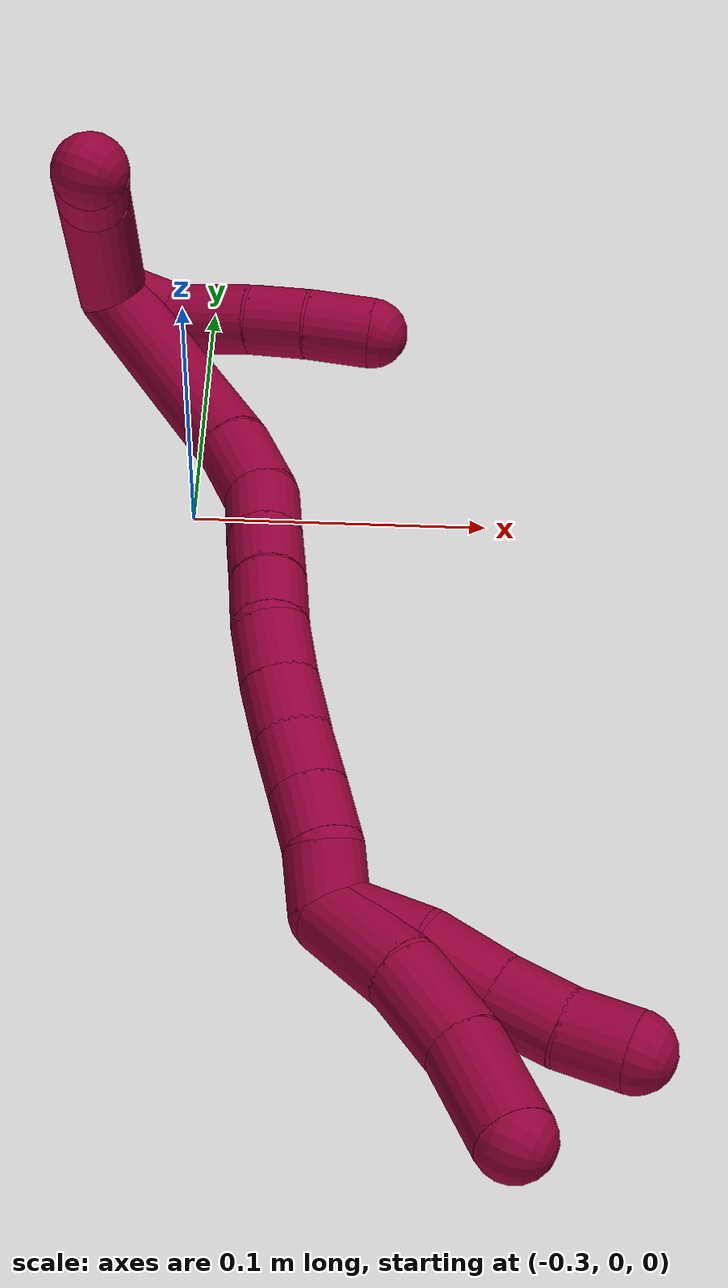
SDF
<sdf version="1.7">
 <world name="default">
  <model name="8">
   <static>0</static>
   <link name="8">
    <collision name="collision-cylinder-e_1_2_8">
     <pose>0.03469 0.030817 -0.009362 -1.86573 0.822481 -1.0635</pose>
     <geometry><cylinder><radius>0.0125</radius><length>0.094673</length></cylinder></geometry>
     <surface>
      <friction><ode><mu>1.16</mu><mu2>1.16</mu2><slip1>0</slip1><slip2>0</slip2></ode></friction>
      <contact><ode><kp>1e+06</kp><kd>1</kd><max_vel>0</max_vel><min_depth>0.001</min_depth></ode></contact>
     </surface>
    </collision>
    <visual name="visual-cylinder-e_1_2_8">
     <pose>0.03469 0.030817 -0.009362 -1.86573 0.822481 -1.0635</pose>
     <geometry><cylinder><radius>0.0125</radius><length>0.094673</length></cylinder></geometry>
     <material><ambient>0.584314 0 0.227451 1</ambient></material>
    </visual>
    <collision name="collision-cylinder-e_2_8_6">
     <pose>0.091889 0.07437 -0.028544 -2.22768 0.950451 -1.61629</pose>
     <geometry><cylinder><radius>0.0125</radius><length>0.055327</length></cylinder></geometry>
     <surface>
      <friction><ode><mu>1.16</mu><mu2>1.16</mu2><slip1>0</slip1><slip2>0</slip2></ode></friction>
      <contact><ode><kp>1e+06</kp><kd>1</kd><max_vel>0</max_vel><min_depth>0.001</min_depth></ode></contact>
     </surface>
    </collision>
    <visual name="visual-cylinder-e_2_8_6">
     <pose>0.091889 0.07437 -0.028544 -2.22768 0.950451 -1.61629</pose>
     <geometry><cylinder><radius>0.0125</radius><length>0.055327</length></cylinder></geometry>
     <material><ambient>0.584314 0 0.227451 1</ambient></material>
    </visual>
    <collision name="collision-cylinder-e_1_2_9">
     <pose>0.000182 0.000165 -0.0132 -3.1291 0.013795 -1.66997</pose>
     <geometry><cylinder><radius>0.0125</radius><length>0.026404</length></cylinder></geometry>
     <surface>
      <friction><ode><mu>1.16</mu><mu2>1.16</mu2><slip1>0</slip1><slip2>0</slip2></ode></friction>
      <contact><ode><kp>1e+06</kp><kd>1</kd><max_vel>0</max_vel><min_depth>0.001</min_depth></ode></contact>
     </surface>
    </collision>
    <visual name="visual-cylinder-e_1_2_9">
     <pose>0.000182 0.000165 -0.0132 -3.1291 0.013795 -1.66997</pose>
     <geometry><cylinder><radius>0.0125</radius><length>0.026404</length></cylinder></geometry>
     <material><ambient>0.584314 0 0.227451 1</ambient></material>
    </visual>
    <collision name="collision-cylinder-e_2_9_10">
     <pose>-0.001403 0.005013 -0.040296 -2.81653 -0.11995 0.702054</pose>
     <geometry><cylinder><radius>0.0125</radius><length>0.029542</length></cylinder></geometry>
     <surface>
      <friction><ode><mu>1.16</mu><mu2>1.16</mu2><slip1>0</slip1><slip2>0</slip2></ode></friction>
      <contact><ode><kp>1e+06</kp><kd>1</kd><max_vel>0</max_vel><min_depth>0.001</min_depth></ode></contact>
     </surface>
    </collision>
    <visual name="visual-cylinder-e_2_9_10">
     <pose>-0.001403 0.005013 -0.040296 -2.81653 -0.11995 0.702054</pose>
     <geometry><cylinder><radius>0.0125</radius><length>0.029542</length></cylinder></geometry>
     <material><ambient>0.584314 0 0.227451 1</ambient></material>
    </visual>
    <collision name="collision-cylinder-e_3_10_11">
     <pose>-0.005118 0.012016 -0.064129 -2.9123 -0.188555 1.37501</pose>
     <geometry><cylinder><radius>0.0125</radius><length>0.020774</length></cylinder></geometry>
     <surface>
      <friction><ode><mu>1.16</mu><mu2>1.16</mu2><slip1>0</slip1><slip2>0</slip2></ode></friction>
      <contact><ode><kp>1e+06</kp><kd>1</kd><max_vel>0</max_vel><min_depth>0.001</min_depth></ode></contact>
     </surface>
    </collision>
    <visual name="visual-cylinder-e_3_10_11">
     <pose>-0.005118 0.012016 -0.064129 -2.9123 -0.188555 1.37501</pose>
     <geometry><cylinder><radius>0.0125</radius><length>0.020774</length></cylinder></geometry>
     <material><ambient>0.584314 0 0.227451 1</ambient></material>
    </visual>
    <collision name="collision-cylinder-e_4_11_5">
     <pose>-0.01007 0.015973 -0.08519 -2.99544 -0.261128 2.1244</pose>
     <geometry><cylinder><radius>0.0125</radius><length>0.02328</length></cylinder></geometry>
     <surface>
      <friction><ode><mu>1.16</mu><mu2>1.16</mu2><slip1>0</slip1><slip2>0</slip2></ode></friction>
      <contact><ode><kp>1e+06</kp><kd>1</kd><max_vel>0</max_vel><min_depth>0.001</min_depth></ode></contact>
     </surface>
    </collision>
    <visual name="visual-cylinder-e_4_11_5">
     <pose>-0.01007 0.015973 -0.08519 -2.99544 -0.261128 2.1244</pose>
     <geometry><cylinder><radius>0.0125</radius><length>0.02328</length></cylinder></geometry>
     <material><ambient>0.584314 0 0.227451 1</ambient></material>
    </visual>
    <collision name="collision-cylinder-e_1_2_12">
     <pose>0.032596 -0.003393 -0.043271 3.06334 0.644129 2.90802</pose>
     <geometry><cylinder><radius>0.0125</radius><length>0.108562</length></cylinder></geometry>
     <surface>
      <friction><ode><mu>1.16</mu><mu2>1.16</mu2><slip1>0</slip1><slip2>0</slip2></ode></friction>
      <contact><ode><kp>1e+06</kp><kd>1</kd><max_vel>0</max_vel><min_depth>0.001</min_depth></ode></contact>
     </surface>
    </collision>
    <visual name="visual-cylinder-e_1_2_12">
     <pose>0.032596 -0.003393 -0.043271 3.06334 0.644129 2.90802</pose>
     <geometry><cylinder><radius>0.0125</radius><length>0.108562</length></cylinder></geometry>
     <material><ambient>0.584314 0 0.227451 1</ambient></material>
    </visual>
    <collision name="collision-cylinder-e_2_12_13">
     <pose>0.07386 -0.009104 -0.096779 2.91893 0.690344 2.53871</pose>
     <geometry><cylinder><radius>0.0125</radius><length>0.027223</length></cylinder></geometry>
     <surface>
      <friction><ode><mu>1.16</mu><mu2>1.16</mu2><slip1>0</slip1><slip2>0</slip2></ode></friction>
      <contact><ode><kp>1e+06</kp><kd>1</kd><max_vel>0</max_vel><min_depth>0.001</min_depth></ode></contact>
     </surface>
    </collision>
    <visual name="visual-cylinder-e_2_12_13">
     <pose>0.07386 -0.009104 -0.096779 2.91893 0.690344 2.53871</pose>
     <geometry><cylinder><radius>0.0125</radius><length>0.027223</length></cylinder></geometry>
     <material><ambient>0.584314 0 0.227451 1</ambient></material>
    </visual>
    <collision name="collision-cylinder-e_3_13_14">
     <pose>0.091706 -0.013749 -0.11272 2.75426 0.979553 2.43653</pose>
     <geometry><cylinder><radius>0.0125</radius><length>0.022109</length></cylinder></geometry>
     <surface>
      <friction><ode><mu>1.16</mu><mu2>1.16</mu2><slip1>0</slip1><slip2>0</slip2></ode></friction>
      <contact><ode><kp>1e+06</kp><kd>1</kd><max_vel>0</max_vel><min_depth>0.001</min_depth></ode></contact>
     </surface>
    </collision>
    <visual name="visual-cylinder-e_3_13_14">
     <pose>0.091706 -0.013749 -0.11272 2.75426 0.979553 2.43653</pose>
     <geometry><cylinder><radius>0.0125</radius><length>0.022109</length></cylinder></geometry>
     <material><ambient>0.584314 0 0.227451 1</ambient></material>
    </visual>
    <collision name="collision-cylinder-e_4_14_15">
     <pose>0.109957 -0.018154 -0.124132 2.79243 0.980978 2.50358</pose>
     <geometry><cylinder><radius>0.0125</radius><length>0.021838</length></cylinder></geometry>
     <surface>
      <friction><ode><mu>1.16</mu><mu2>1.16</mu2><slip1>0</slip1><slip2>0</slip2></ode></friction>
      <contact><ode><kp>1e+06</kp><kd>1</kd><max_vel>0</max_vel><min_depth>0.001</min_depth></ode></contact>
     </surface>
    </collision>
    <visual name="visual-cylinder-e_4_14_15">
     <pose>0.109957 -0.018154 -0.124132 2.79243 0.980978 2.50358</pose>
     <geometry><cylinder><radius>0.0125</radius><length>0.021838</length></cylinder></geometry>
     <material><ambient>0.584314 0 0.227451 1</ambient></material>
    </visual>
    <collision name="collision-cylinder-e_5_15_16">
     <pose>0.127292 -0.0229 -0.135064 2.66943 0.953177 2.26951</pose>
     <geometry><cylinder><radius>0.0125</radius><length>0.020264</length></cylinder></geometry>
     <surface>
      <friction><ode><mu>1.16</mu><mu2>1.16</mu2><slip1>0</slip1><slip2>0</slip2></ode></friction>
      <contact><ode><kp>1e+06</kp><kd>1</kd><max_vel>0</max_vel><min_depth>0.001</min_depth></ode></contact>
     </surface>
    </collision>
    <visual name="visual-cylinder-e_5_15_16">
     <pose>0.127292 -0.0229 -0.135064 2.66943 0.953177 2.26951</pose>
     <geometry><cylinder><radius>0.0125</radius><length>0.020264</length></cylinder></geometry>
     <material><ambient>0.584314 0 0.227451 1</ambient></material>
    </visual>
    <collision name="collision-cylinder-e_6_16_17">
     <pose>0.141947 -0.030345 -0.146314 2.47129 0.693858 1.60816</pose>
     <geometry><cylinder><radius>0.0125</radius><length>0.02</length></cylinder></geometry>
     <surface>
      <friction><ode><mu>1.16</mu><mu2>1.16</mu2><slip1>0</slip1><slip2>0</slip2></ode></friction>
      <contact><ode><kp>1e+06</kp><kd>1</kd><max_vel>0</max_vel><min_depth>0.001</min_depth></ode></contact>
     </surface>
    </collision>
    <visual name="visual-cylinder-e_6_16_17">
     <pose>0.141947 -0.030345 -0.146314 2.47129 0.693858 1.60816</pose>
     <geometry><cylinder><radius>0.0125</radius><length>0.02</length></cylinder></geometry>
     <material><ambient>0.584314 0 0.227451 1</ambient></material>
    </visual>
    <collision name="collision-cylinder-e_7_17_18">
     <pose>0.154498 -0.039567 -0.158848 2.54229 0.66299 1.67861</pose>
     <geometry><cylinder><radius>0.0125</radius><length>0.020004</length></cylinder></geometry>
     <surface>
      <friction><ode><mu>1.16</mu><mu2>1.16</mu2><slip1>0</slip1><slip2>0</slip2></ode></friction>
      <contact><ode><kp>1e+06</kp><kd>1</kd><max_vel>0</max_vel><min_depth>0.001</min_depth></ode></contact>
     </surface>
    </collision>
    <visual name="visual-cylinder-e_7_17_18">
     <pose>0.154498 -0.039567 -0.158848 2.54229 0.66299 1.67861</pose>
     <geometry><cylinder><radius>0.0125</radius><length>0.020004</length></cylinder></geometry>
     <material><ambient>0.584314 0 0.227451 1</ambient></material>
    </visual>
    <collision name="collision-cylinder-e_8_18_19">
     <pose>0.167046 -0.047707 -0.172103 2.64068 0.693444 1.90939</pose>
     <geometry><cylinder><radius>0.0125</radius><length>0.02</length></cylinder></geometry>
     <surface>
      <friction><ode><mu>1.16</mu><mu2>1.16</mu2><slip1>0</slip1><slip2>0</slip2></ode></friction>
      <contact><ode><kp>1e+06</kp><kd>1</kd><max_vel>0</max_vel><min_depth>0.001</min_depth></ode></contact>
     </surface>
    </collision>
    <visual name="visual-cylinder-e_8_18_19">
     <pose>0.167046 -0.047707 -0.172103 2.64068 0.693444 1.90939</pose>
     <geometry><cylinder><radius>0.0125</radius><length>0.02</length></cylinder></geometry>
     <material><ambient>0.584314 0 0.227451 1</ambient></material>
    </visual>
    <collision name="collision-cylinder-e_9_19_20">
     <pose>0.179924 -0.055139 -0.185478 2.62816 0.70571 1.90304</pose>
     <geometry><cylinder><radius>0.0125</radius><length>0.02</length></cylinder></geometry>
     <surface>
      <friction><ode><mu>1.16</mu><mu2>1.16</mu2><slip1>0</slip1><slip2>0</slip2></ode></friction>
      <contact><ode><kp>1e+06</kp><kd>1</kd><max_vel>0</max_vel><min_depth>0.001</min_depth></ode></contact>
     </surface>
    </collision>
    <visual name="visual-cylinder-e_9_19_20">
     <pose>0.179924 -0.055139 -0.185478 2.62816 0.70571 1.90304</pose>
     <geometry><cylinder><radius>0.0125</radius><length>0.02</length></cylinder></geometry>
     <material><ambient>0.584314 0 0.227451 1</ambient></material>
    </visual>
    <collision name="collision-cylinder-e_10_20_1">
     <pose>0.191753 -0.065491 -0.197372 2.24298 0.563748 1.08164</pose>
     <geometry><cylinder><radius>0.0125</radius><length>0.02</length></cylinder></geometry>
     <surface>
      <friction><ode><mu>1.16</mu><mu2>1.16</mu2><slip1>0</slip1><slip2>0</slip2></ode></friction>
      <contact><ode><kp>1e+06</kp><kd>1</kd><max_vel>0</max_vel><min_depth>0.001</min_depth></ode></contact>
     </surface>
    </collision>
    <visual name="visual-cylinder-e_10_20_1">
     <pose>0.191753 -0.065491 -0.197372 2.24298 0.563748 1.08164</pose>
     <geometry><cylinder><radius>0.0125</radius><length>0.02</length></cylinder></geometry>
     <material><ambient>0.584314 0 0.227451 1</ambient></material>
    </visual>
    <collision name="collision-cylinder-e_1_1_21">
     <pose>0.20438 -0.071232 -0.218158 -3.08537 0.438142 -2.89032</pose>
     <geometry><cylinder><radius>0.0125</radius><length>0.034337</length></cylinder></geometry>
     <surface>
      <friction><ode><mu>1.16</mu><mu2>1.16</mu2><slip1>0</slip1><slip2>0</slip2></ode></friction>
      <contact><ode><kp>1e+06</kp><kd>1</kd><max_vel>0</max_vel><min_depth>0.001</min_depth></ode></contact>
     </surface>
    </collision>
    <visual name="visual-cylinder-e_1_1_21">
     <pose>0.20438 -0.071232 -0.218158 -3.08537 0.438142 -2.89032</pose>
     <geometry><cylinder><radius>0.0125</radius><length>0.034337</length></cylinder></geometry>
     <material><ambient>0.584314 0 0.227451 1</ambient></material>
    </visual>
    <collision name="collision-cylinder-e_2_21_22">
     <pose>0.2194 -0.07203 -0.247094 3.01755 0.519754 2.6827</pose>
     <geometry><cylinder><radius>0.0125</radius><length>0.031149</length></cylinder></geometry>
     <surface>
      <friction><ode><mu>1.16</mu><mu2>1.16</mu2><slip1>0</slip1><slip2>0</slip2></ode></friction>
      <contact><ode><kp>1e+06</kp><kd>1</kd><max_vel>0</max_vel><min_depth>0.001</min_depth></ode></contact>
     </surface>
    </collision>
    <visual name="visual-cylinder-e_2_21_22">
     <pose>0.2194 -0.07203 -0.247094 3.01755 0.519754 2.6827</pose>
     <geometry><cylinder><radius>0.0125</radius><length>0.031149</length></cylinder></geometry>
     <material><ambient>0.584314 0 0.227451 1</ambient></material>
    </visual>
    <collision name="collision-cylinder-e_3_22_4">
     <pose>0.238238 -0.075952 -0.273526 2.97054 0.698912 2.67944</pose>
     <geometry><cylinder><radius>0.0125</radius><length>0.034513</length></cylinder></geometry>
     <surface>
      <friction><ode><mu>1.16</mu><mu2>1.16</mu2><slip1>0</slip1><slip2>0</slip2></ode></friction>
      <contact><ode><kp>1e+06</kp><kd>1</kd><max_vel>0</max_vel><min_depth>0.001</min_depth></ode></contact>
     </surface>
    </collision>
    <visual name="visual-cylinder-e_3_22_4">
     <pose>0.238238 -0.075952 -0.273526 2.97054 0.698912 2.67944</pose>
     <geometry><cylinder><radius>0.0125</radius><length>0.034513</length></cylinder></geometry>
     <material><ambient>0.584314 0 0.227451 1</ambient></material>
    </visual>
    <collision name="collision-cylinder-e_1_1_23">
     <pose>0.197121 -0.070708 -0.217813 -3.04981 0.001619 -0.03526</pose>
     <geometry><cylinder><radius>0.0125</radius><length>0.030484</length></cylinder></geometry>
     <surface>
      <friction><ode><mu>1.16</mu><mu2>1.16</mu2><slip1>0</slip1><slip2>0</slip2></ode></friction>
      <contact><ode><kp>1e+06</kp><kd>1</kd><max_vel>0</max_vel><min_depth>0.001</min_depth></ode></contact>
     </surface>
    </collision>
    <visual name="visual-cylinder-e_1_1_23">
     <pose>0.197121 -0.070708 -0.217813 -3.04981 0.001619 -0.03526</pose>
     <geometry><cylinder><radius>0.0125</radius><length>0.030484</length></cylinder></geometry>
     <material><ambient>0.584314 0 0.227451 1</ambient></material>
    </visual>
    <collision name="collision-cylinder-e_2_23_24">
     <pose>0.198083 -0.070453 -0.245956 3.05374 0.07185 1.37082</pose>
     <geometry><cylinder><radius>0.0125</radius><length>0.026099</length></cylinder></geometry>
     <surface>
      <friction><ode><mu>1.16</mu><mu2>1.16</mu2><slip1>0</slip1><slip2>0</slip2></ode></friction>
      <contact><ode><kp>1e+06</kp><kd>1</kd><max_vel>0</max_vel><min_depth>0.001</min_depth></ode></contact>
     </surface>
    </collision>
    <visual name="visual-cylinder-e_2_23_24">
     <pose>0.198083 -0.070453 -0.245956 3.05374 0.07185 1.37082</pose>
     <geometry><cylinder><radius>0.0125</radius><length>0.026099</length></cylinder></geometry>
     <material><ambient>0.584314 0 0.227451 1</ambient></material>
    </visual>
    <collision name="collision-cylinder-e_3_24_25">
     <pose>0.199957 -0.071426 -0.270011 -3.12636 0.084321 -2.78428</pose>
     <geometry><cylinder><radius>0.0125</radius><length>0.022261</length></cylinder></geometry>
     <surface>
      <friction><ode><mu>1.16</mu><mu2>1.16</mu2><slip1>0</slip1><slip2>0</slip2></ode></friction>
      <contact><ode><kp>1e+06</kp><kd>1</kd><max_vel>0</max_vel><min_depth>0.001</min_depth></ode></contact>
     </surface>
    </collision>
    <visual name="visual-cylinder-e_3_24_25">
     <pose>0.199957 -0.071426 -0.270011 -3.12636 0.084321 -2.78428</pose>
     <geometry><cylinder><radius>0.0125</radius><length>0.022261</length></cylinder></geometry>
     <material><ambient>0.584314 0 0.227451 1</ambient></material>
    </visual>
    <collision name="collision-cylinder-e_4_25_3">
     <pose>0.200754 -0.069965 -0.291599 -3.01914 -0.013231 0.215008</pose>
     <geometry><cylinder><radius>0.0125</radius><length>0.021157</length></cylinder></geometry>
     <surface>
      <friction><ode><mu>1.16</mu><mu2>1.16</mu2><slip1>0</slip1><slip2>0</slip2></ode></friction>
      <contact><ode><kp>1e+06</kp><kd>1</kd><max_vel>0</max_vel><min_depth>0.001</min_depth></ode></contact>
     </surface>
    </collision>
    <visual name="visual-cylinder-e_4_25_3">
     <pose>0.200754 -0.069965 -0.291599 -3.01914 -0.013231 0.215008</pose>
     <geometry><cylinder><radius>0.0125</radius><length>0.021157</length></cylinder></geometry>
     <material><ambient>0.584314 0 0.227451 1</ambient></material>
    </visual>
    <collision name="collision-sphere-3">
     <pose>0.200614 -0.068673 -0.302097 0 -0 0</pose>
     <geometry><sphere><radius>0.0125</radius></sphere></geometry>
     <surface>
      <friction><ode><mu>1.16</mu><mu2>1.16</mu2><slip1>0</slip1><slip2>0</slip2></ode></friction>
      <contact><ode><kp>1e+06</kp><kd>1</kd><max_vel>0</max_vel><min_depth>0.001</min_depth></ode></contact>
     </surface>
    </collision>
    <visual name="visual-sphere-3">
     <pose>0.200614 -0.068673 -0.302097 0 -0 0</pose>
     <geometry><sphere><radius>0.0125</radius></sphere></geometry>
     <material><ambient>0.584314 0 0.227451 1</ambient></material>
    </visual>
    <collision name="collision-sphere-25">
     <pose>0.200894 -0.071257 -0.2811 0 -0 0</pose>
     <geometry><sphere><radius>0.0125</radius></sphere></geometry>
     <surface>
      <friction><ode><mu>1.16</mu><mu2>1.16</mu2><slip1>0</slip1><slip2>0</slip2></ode></friction>
      <contact><ode><kp>1e+06</kp><kd>1</kd><max_vel>0</max_vel><min_depth>0.001</min_depth></ode></contact>
     </surface>
    </collision>
    <visual name="visual-sphere-25">
     <pose>0.200894 -0.071257 -0.2811 0 -0 0</pose>
     <geometry><sphere><radius>0.0125</radius></sphere></geometry>
     <material><ambient>0.584314 0 0.227451 1</ambient></material>
    </visual>
    <collision name="collision-sphere-24">
     <pose>0.199019 -0.071595 -0.258921 0 -0 0</pose>
     <geometry><sphere><radius>0.0125</radius></sphere></geometry>
     <surface>
      <friction><ode><mu>1.16</mu><mu2>1.16</mu2><slip1>0</slip1><slip2>0</slip2></ode></friction>
      <contact><ode><kp>1e+06</kp><kd>1</kd><max_vel>0</max_vel><min_depth>0.001</min_depth></ode></contact>
     </surface>
    </collision>
    <visual name="visual-sphere-24">
     <pose>0.199019 -0.071595 -0.258921 0 -0 0</pose>
     <geometry><sphere><radius>0.0125</radius></sphere></geometry>
     <material><ambient>0.584314 0 0.227451 1</ambient></material>
    </visual>
    <collision name="collision-sphere-23">
     <pose>0.197146 -0.069311 -0.232991 0 -0 0</pose>
     <geometry><sphere><radius>0.0125</radius></sphere></geometry>
     <surface>
      <friction><ode><mu>1.16</mu><mu2>1.16</mu2><slip1>0</slip1><slip2>0</slip2></ode></friction>
      <contact><ode><kp>1e+06</kp><kd>1</kd><max_vel>0</max_vel><min_depth>0.001</min_depth></ode></contact>
     </surface>
    </collision>
    <visual name="visual-sphere-23">
     <pose>0.197146 -0.069311 -0.232991 0 -0 0</pose>
     <geometry><sphere><radius>0.0125</radius></sphere></geometry>
     <material><ambient>0.584314 0 0.227451 1</ambient></material>
    </visual>
    <collision name="collision-sphere-4">
     <pose>0.249341 -0.0782 -0.286544 0 -0 0</pose>
     <geometry><sphere><radius>0.0125</radius></sphere></geometry>
     <surface>
      <friction><ode><mu>1.16</mu><mu2>1.16</mu2><slip1>0</slip1><slip2>0</slip2></ode></friction>
      <contact><ode><kp>1e+06</kp><kd>1</kd><max_vel>0</max_vel><min_depth>0.001</min_depth></ode></contact>
     </surface>
    </collision>
    <visual name="visual-sphere-4">
     <pose>0.249341 -0.0782 -0.286544 0 -0 0</pose>
     <geometry><sphere><radius>0.0125</radius></sphere></geometry>
     <material><ambient>0.584314 0 0.227451 1</ambient></material>
    </visual>
    <collision name="collision-sphere-22">
     <pose>0.227135 -0.073703 -0.260508 0 -0 0</pose>
     <geometry><sphere><radius>0.0125</radius></sphere></geometry>
     <surface>
      <friction><ode><mu>1.16</mu><mu2>1.16</mu2><slip1>0</slip1><slip2>0</slip2></ode></friction>
      <contact><ode><kp>1e+06</kp><kd>1</kd><max_vel>0</max_vel><min_depth>0.001</min_depth></ode></contact>
     </surface>
    </collision>
    <visual name="visual-sphere-22">
     <pose>0.227135 -0.073703 -0.260508 0 -0 0</pose>
     <geometry><sphere><radius>0.0125</radius></sphere></geometry>
     <material><ambient>0.584314 0 0.227451 1</ambient></material>
    </visual>
    <collision name="collision-sphere-21">
     <pose>0.211664 -0.070358 -0.23368 0 -0 0</pose>
     <geometry><sphere><radius>0.0125</radius></sphere></geometry>
     <surface>
      <friction><ode><mu>1.16</mu><mu2>1.16</mu2><slip1>0</slip1><slip2>0</slip2></ode></friction>
      <contact><ode><kp>1e+06</kp><kd>1</kd><max_vel>0</max_vel><min_depth>0.001</min_depth></ode></contact>
     </surface>
    </collision>
    <visual name="visual-sphere-21">
     <pose>0.211664 -0.070358 -0.23368 0 -0 0</pose>
     <geometry><sphere><radius>0.0125</radius></sphere></geometry>
     <material><ambient>0.584314 0 0.227451 1</ambient></material>
    </visual>
    <collision name="collision-sphere-1">
     <pose>0.197097 -0.072105 -0.202635 0 -0 0</pose>
     <geometry><sphere><radius>0.0125</radius></sphere></geometry>
     <surface>
      <friction><ode><mu>1.16</mu><mu2>1.16</mu2><slip1>0</slip1><slip2>0</slip2></ode></friction>
      <contact><ode><kp>1e+06</kp><kd>1</kd><max_vel>0</max_vel><min_depth>0.001</min_depth></ode></contact>
     </surface>
    </collision>
    <visual name="visual-sphere-1">
     <pose>0.197097 -0.072105 -0.202635 0 -0 0</pose>
     <geometry><sphere><radius>0.0125</radius></sphere></geometry>
     <material><ambient>0.584314 0 0.227451 1</ambient></material>
    </visual>
    <collision name="collision-sphere-11">
     <pose>-0.007065 0.014335 -0.074065 0 -0 0</pose>
     <geometry><sphere><radius>0.0125</radius></sphere></geometry>
     <surface>
      <friction><ode><mu>1.16</mu><mu2>1.16</mu2><slip1>0</slip1><slip2>0</slip2></ode></friction>
      <contact><ode><kp>1e+06</kp><kd>1</kd><max_vel>0</max_vel><min_depth>0.001</min_depth></ode></contact>
     </surface>
    </collision>
    <visual name="visual-sphere-11">
     <pose>-0.007065 0.014335 -0.074065 0 -0 0</pose>
     <geometry><sphere><radius>0.0125</radius></sphere></geometry>
     <material><ambient>0.584314 0 0.227451 1</ambient></material>
    </visual>
    <collision name="collision-sphere-10">
     <pose>-0.003171 0.009697 -0.054193 0 -0 0</pose>
     <geometry><sphere><radius>0.0125</radius></sphere></geometry>
     <surface>
      <friction><ode><mu>1.16</mu><mu2>1.16</mu2><slip1>0</slip1><slip2>0</slip2></ode></friction>
      <contact><ode><kp>1e+06</kp><kd>1</kd><max_vel>0</max_vel><min_depth>0.001</min_depth></ode></contact>
     </surface>
    </collision>
    <visual name="visual-sphere-10">
     <pose>-0.003171 0.009697 -0.054193 0 -0 0</pose>
     <geometry><sphere><radius>0.0125</radius></sphere></geometry>
     <material><ambient>0.584314 0 0.227451 1</ambient></material>
    </visual>
    <collision name="collision-sphere-6">
     <pose>0.114398 0.087104 -0.038364 0 -0 0</pose>
     <geometry><sphere><radius>0.0125</radius></sphere></geometry>
     <surface>
      <friction><ode><mu>1.16</mu><mu2>1.16</mu2><slip1>0</slip1><slip2>0</slip2></ode></friction>
      <contact><ode><kp>1e+06</kp><kd>1</kd><max_vel>0</max_vel><min_depth>0.001</min_depth></ode></contact>
     </surface>
    </collision>
    <visual name="visual-sphere-6">
     <pose>0.114398 0.087104 -0.038364 0 -0 0</pose>
     <geometry><sphere><radius>0.0125</radius></sphere></geometry>
     <material><ambient>0.584314 0 0.227451 1</ambient></material>
    </visual>
    <collision name="collision-sphere-9">
     <pose>0.000364 0.00033 -0.026399 0 -0 0</pose>
     <geometry><sphere><radius>0.0125</radius></sphere></geometry>
     <surface>
      <friction><ode><mu>1.16</mu><mu2>1.16</mu2><slip1>0</slip1><slip2>0</slip2></ode></friction>
      <contact><ode><kp>1e+06</kp><kd>1</kd><max_vel>0</max_vel><min_depth>0.001</min_depth></ode></contact>
     </surface>
    </collision>
    <visual name="visual-sphere-9">
     <pose>0.000364 0.00033 -0.026399 0 -0 0</pose>
     <geometry><sphere><radius>0.0125</radius></sphere></geometry>
     <material><ambient>0.584314 0 0.227451 1</ambient></material>
    </visual>
    <collision name="collision-sphere-2">
     <geometry><sphere><radius>0.0125</radius></sphere></geometry>
     <surface>
      <friction><ode><mu>1.16</mu><mu2>1.16</mu2><slip1>0</slip1><slip2>0</slip2></ode></friction>
      <contact><ode><kp>1e+06</kp><kd>1</kd><max_vel>0</max_vel><min_depth>0.001</min_depth></ode></contact>
     </surface>
    </collision>
    <visual name="visual-sphere-2">
     <geometry><sphere><radius>0.0125</radius></sphere></geometry>
     <material><ambient>0.584314 0 0.227451 1</ambient></material>
    </visual>
    <collision name="collision-sphere-19">
     <pose>0.173438 -0.0514 -0.178848 0 -0 0</pose>
     <geometry><sphere><radius>0.0125</radius></sphere></geometry>
     <surface>
      <friction><ode><mu>1.16</mu><mu2>1.16</mu2><slip1>0</slip1><slip2>0</slip2></ode></friction>
      <contact><ode><kp>1e+06</kp><kd>1</kd><max_vel>0</max_vel><min_depth>0.001</min_depth></ode></contact>
     </surface>
    </collision>
    <visual name="visual-sphere-19">
     <pose>0.173438 -0.0514 -0.178848 0 -0 0</pose>
     <geometry><sphere><radius>0.0125</radius></sphere></geometry>
     <material><ambient>0.584314 0 0.227451 1</ambient></material>
    </visual>
    <collision name="collision-sphere-8">
     <pose>0.06938 0.061635 -0.018724 0 -0 0</pose>
     <geometry><sphere><radius>0.0125</radius></sphere></geometry>
     <surface>
      <friction><ode><mu>1.16</mu><mu2>1.16</mu2><slip1>0</slip1><slip2>0</slip2></ode></friction>
      <contact><ode><kp>1e+06</kp><kd>1</kd><max_vel>0</max_vel><min_depth>0.001</min_depth></ode></contact>
     </surface>
    </collision>
    <visual name="visual-sphere-8">
     <pose>0.06938 0.061635 -0.018724 0 -0 0</pose>
     <geometry><sphere><radius>0.0125</radius></sphere></geometry>
     <material><ambient>0.584314 0 0.227451 1</ambient></material>
    </visual>
    <collision name="collision-sphere-5">
     <pose>-0.013075 0.01761 -0.096316 0 -0 0</pose>
     <geometry><sphere><radius>0.0125</radius></sphere></geometry>
     <surface>
      <friction><ode><mu>1.16</mu><mu2>1.16</mu2><slip1>0</slip1><slip2>0</slip2></ode></friction>
      <contact><ode><kp>1e+06</kp><kd>1</kd><max_vel>0</max_vel><min_depth>0.001</min_depth></ode></contact>
     </surface>
    </collision>
    <visual name="visual-sphere-5">
     <pose>-0.013075 0.01761 -0.096316 0 -0 0</pose>
     <geometry><sphere><radius>0.0125</radius></sphere></geometry>
     <material><ambient>0.584314 0 0.227451 1</ambient></material>
    </visual>
    <collision name="collision-sphere-12">
     <pose>0.065192 -0.006786 -0.086543 0 -0 0</pose>
     <geometry><sphere><radius>0.0125</radius></sphere></geometry>
     <surface>
      <friction><ode><mu>1.16</mu><mu2>1.16</mu2><slip1>0</slip1><slip2>0</slip2></ode></friction>
      <contact><ode><kp>1e+06</kp><kd>1</kd><max_vel>0</max_vel><min_depth>0.001</min_depth></ode></contact>
     </surface>
    </collision>
    <visual name="visual-sphere-12">
     <pose>0.065192 -0.006786 -0.086543 0 -0 0</pose>
     <geometry><sphere><radius>0.0125</radius></sphere></geometry>
     <material><ambient>0.584314 0 0.227451 1</ambient></material>
    </visual>
    <collision name="collision-sphere-13">
     <pose>0.082528 -0.011422 -0.107015 0 -0 0</pose>
     <geometry><sphere><radius>0.0125</radius></sphere></geometry>
     <surface>
      <friction><ode><mu>1.16</mu><mu2>1.16</mu2><slip1>0</slip1><slip2>0</slip2></ode></friction>
      <contact><ode><kp>1e+06</kp><kd>1</kd><max_vel>0</max_vel><min_depth>0.001</min_depth></ode></contact>
     </surface>
    </collision>
    <visual name="visual-sphere-13">
     <pose>0.082528 -0.011422 -0.107015 0 -0 0</pose>
     <geometry><sphere><radius>0.0125</radius></sphere></geometry>
     <material><ambient>0.584314 0 0.227451 1</ambient></material>
    </visual>
    <collision name="collision-sphere-14">
     <pose>0.100884 -0.016076 -0.118425 0 -0 0</pose>
     <geometry><sphere><radius>0.0125</radius></sphere></geometry>
     <surface>
      <friction><ode><mu>1.16</mu><mu2>1.16</mu2><slip1>0</slip1><slip2>0</slip2></ode></friction>
      <contact><ode><kp>1e+06</kp><kd>1</kd><max_vel>0</max_vel><min_depth>0.001</min_depth></ode></contact>
     </surface>
    </collision>
    <visual name="visual-sphere-14">
     <pose>0.100884 -0.016076 -0.118425 0 -0 0</pose>
     <geometry><sphere><radius>0.0125</radius></sphere></geometry>
     <material><ambient>0.584314 0 0.227451 1</ambient></material>
    </visual>
    <collision name="collision-sphere-15">
     <pose>0.119031 -0.020232 -0.129838 0 -0 0</pose>
     <geometry><sphere><radius>0.0125</radius></sphere></geometry>
     <surface>
      <friction><ode><mu>1.16</mu><mu2>1.16</mu2><slip1>0</slip1><slip2>0</slip2></ode></friction>
      <contact><ode><kp>1e+06</kp><kd>1</kd><max_vel>0</max_vel><min_depth>0.001</min_depth></ode></contact>
     </surface>
    </collision>
    <visual name="visual-sphere-15">
     <pose>0.119031 -0.020232 -0.129838 0 -0 0</pose>
     <geometry><sphere><radius>0.0125</radius></sphere></geometry>
     <material><ambient>0.584314 0 0.227451 1</ambient></material>
    </visual>
    <collision name="collision-sphere-16">
     <pose>0.135552 -0.025569 -0.140289 0 -0 0</pose>
     <geometry><sphere><radius>0.0125</radius></sphere></geometry>
     <surface>
      <friction><ode><mu>1.16</mu><mu2>1.16</mu2><slip1>0</slip1><slip2>0</slip2></ode></friction>
      <contact><ode><kp>1e+06</kp><kd>1</kd><max_vel>0</max_vel><min_depth>0.001</min_depth></ode></contact>
     </surface>
    </collision>
    <visual name="visual-sphere-16">
     <pose>0.135552 -0.025569 -0.140289 0 -0 0</pose>
     <geometry><sphere><radius>0.0125</radius></sphere></geometry>
     <material><ambient>0.584314 0 0.227451 1</ambient></material>
    </visual>
    <collision name="collision-sphere-17">
     <pose>0.148342 -0.035121 -0.152338 0 -0 0</pose>
     <geometry><sphere><radius>0.0125</radius></sphere></geometry>
     <surface>
      <friction><ode><mu>1.16</mu><mu2>1.16</mu2><slip1>0</slip1><slip2>0</slip2></ode></friction>
      <contact><ode><kp>1e+06</kp><kd>1</kd><max_vel>0</max_vel><min_depth>0.001</min_depth></ode></contact>
     </surface>
    </collision>
    <visual name="visual-sphere-17">
     <pose>0.148342 -0.035121 -0.152338 0 -0 0</pose>
     <geometry><sphere><radius>0.0125</radius></sphere></geometry>
     <material><ambient>0.584314 0 0.227451 1</ambient></material>
    </visual>
    <collision name="collision-sphere-18">
     <pose>0.160654 -0.044014 -0.165357 0 -0 0</pose>
     <geometry><sphere><radius>0.0125</radius></sphere></geometry>
     <surface>
      <friction><ode><mu>1.16</mu><mu2>1.16</mu2><slip1>0</slip1><slip2>0</slip2></ode></friction>
      <contact><ode><kp>1e+06</kp><kd>1</kd><max_vel>0</max_vel><min_depth>0.001</min_depth></ode></contact>
     </surface>
    </collision>
    <visual name="visual-sphere-18">
     <pose>0.160654 -0.044014 -0.165357 0 -0 0</pose>
     <geometry><sphere><radius>0.0125</radius></sphere></geometry>
     <material><ambient>0.584314 0 0.227451 1</ambient></material>
    </visual>
    <collision name="collision-sphere-20">
     <pose>0.186409 -0.058877 -0.192108 0 -0 0</pose>
     <geometry><sphere><radius>0.0125</radius></sphere></geometry>
     <surface>
      <friction><ode><mu>1.16</mu><mu2>1.16</mu2><slip1>0</slip1><slip2>0</slip2></ode></friction>
      <contact><ode><kp>1e+06</kp><kd>1</kd><max_vel>0</max_vel><min_depth>0.001</min_depth></ode></contact>
     </surface>
    </collision>
    <visual name="visual-sphere-20">
     <pose>0.186409 -0.058877 -0.192108 0 -0 0</pose>
     <geometry><sphere><radius>0.0125</radius></sphere></geometry>
     <material><ambient>0.584314 0 0.227451 1</ambient></material>
    </visual>
    <inertial>
     <pose>0.105605 -0.017487 -0.119549 0 -0 0</pose>
     <mass>0.75</mass>
     <inertia>
      <ixx>-6.1e-05</ixx>
      <ixy>0</ixy>
      <ixz>0</ixz>
      <iyy>0.000156</iyy>
      <iyz>0</iyz>
      <izz>-0.000237</izz>
     </inertia>
    </inertial>
   </link>
   <pose>-0.336647 0.096658 0.012514 1.55131 -0.442435 -2.01323</pose>
  </model>
 </world>
</sdf>
